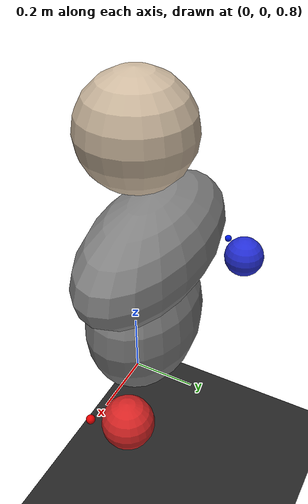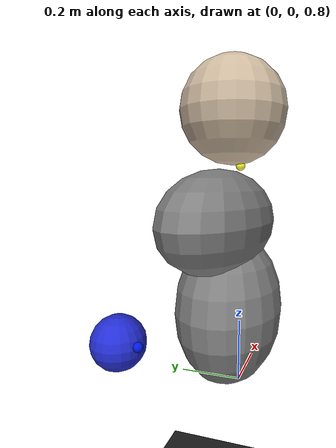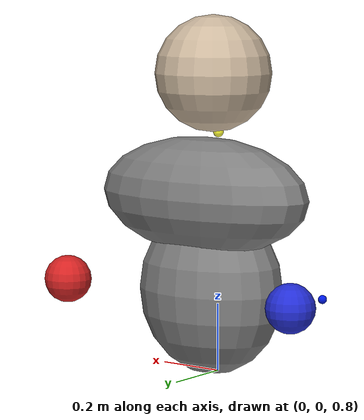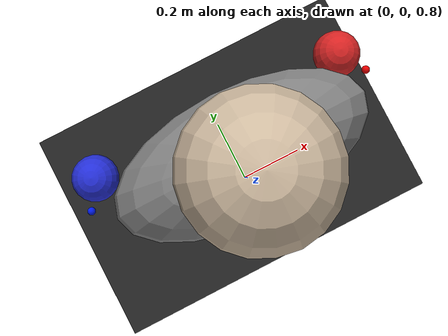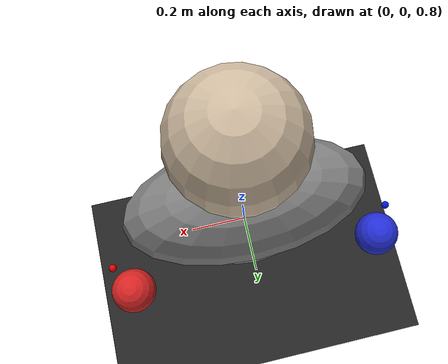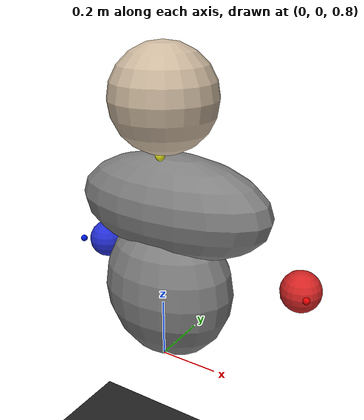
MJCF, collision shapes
<mujoco model="boxing_mannequin_scene">
  <compiler angle="radian" coordinate="local" inertiafromgeom="auto" meshdir="." autolimits="true"/>
  <option timestep="0.002" gravity="0 0 -9.81" integrator="RK4"/>

  <asset>
    <texture name="skybox" type="skybox" builtin="gradient" rgb1="0.15 0.18 0.22" rgb2="0.02 0.03 0.04" width="512" height="512"/>
    <texture name="floor_tex" type="2d" builtin="checker" rgb1="0.16 0.16 0.16" rgb2="0.12 0.12 0.12" width="256" height="256"/>
    <material name="floor_mat" texture="floor_tex" texrepeat="6 6" texuniform="true" reflectance="0.1"/>
    <material name="mannequin_mat" rgba="0.75 0.68 0.58 1.0" specular="0.1" shininess="0.2"/>
    <material name="head_mat" rgba="0.80 0.72 0.62 1.0" specular="0.1" shininess="0.2"/>
    <material name="glove_r_mat" rgba="0.84 0.14 0.14 1.0" specular="0.2" shininess="0.3"/>
    <material name="glove_l_mat" rgba="0.14 0.18 0.84 1.0" specular="0.2" shininess="0.3"/>
    <mesh name="mannequin_mesh" file="BoxingDummy.stl" scale="1.1 1.1 1.1"/>
    <mesh name="glove_r_mesh" file="boxing_glove_r.stl" scale="0.06 0.06 0.06"/>
    <mesh name="glove_l_mesh" file="boxing_glove_r.stl" scale="-0.06 0.06 0.06"/>
  </asset>

  <default>
    <geom friction="0.8 0.1 0.02" solref="0.003 1" solimp="0.95 0.98 0.001"/>
    <joint damping="20" armature="0.01"/>
    <position kp="1800" kv="90" ctrllimited="true"/>
  </default>

  <worldbody>
    <light directional="true" pos="0 0 4" dir="0 0 -1" diffuse="0.8 0.8 0.8" specular="0.2 0.2 0.2"/>
    <geom name="floor" type="plane" pos="0 0 0" size="5 5 0.1" material="floor_mat" contype="1" conaffinity="1"/>

    <!-- Root body with XY planar translation control. -->
    <body name="mannequin" pos="0 0 0.0">
      <joint name="mannequin_x" type="slide" axis="1 0 0" range="-1.5 1.5"/>
      <joint name="mannequin_y" type="slide" axis="0 1 0" range="-1.5 1.5"/>
      <joint name="mannequin_rotation" type="hinge" axis="0 0 1" range="-3.14 3.14"/>
      <geom name="mannequin_visual" type="mesh" mesh="mannequin_mesh" material="mannequin_mat" contype="0" conaffinity="0"/>
      <geom name="mannequin_chest_collision" type="ellipsoid" pos="0.0 0.07 1.33" size="0.35 0.17 0.17"/>
      <geom name="mannequin_waist_collision" type="ellipsoid" pos="0.0 0.035 1.05" size="0.23 0.17 0.25"/>
      <geom name="mannequin_head_collision" type="sphere" pos="0.0 0.025 1.68" size="0.17" mass="4.0" material="head_mat"/>

      <!-- Main observation sites -->
      <site name="mannequin_com_site" pos="0 0 1.508" size="0.015" rgba="1 1 0 0.8"/>
      <site name="mannequin_head_hit_site" type="sphere" pos="0.0 0.025 1.68" size="0.17" rgba="1 0.2 0.2 0.25"/>
      <site name="mannequin_chest_hit_site" type="ellipsoid" pos="0.0 0.07 1.33" size="0.35 0.17 0.17" rgba="0.2 1 0.2 0.2"/>
      <site name="mannequin_waist_hit_site" type="ellipsoid" pos="0.0 0.035 1.05" size="0.23 0.17 0.25" rgba="0.2 1 0.2 0.2"/>

      <body name="right_glove_anchor" pos="0.402 0.126 1.068">
        <joint name="right_glove_x" type="slide" axis="1 0 0" range="-0.65 0"/>
        <joint name="right_glove_y" type="slide" axis="0 1 0" range="0 0.55"/>
        <joint name="right_glove_z" type="slide" axis="0 0 1" range="0 0.45"/>
        <geom name="right_glove_visual" type="mesh" mesh="glove_r_mesh" material="glove_r_mat" contype="0" conaffinity="0"/>
        <geom name="right_glove_collision" type="sphere" pos="0.0 0.082 -0.006" size="0.07" mass="1.2" rgba="0.84 0.14 0.14 0.15"/>
        <site name="right_glove_site" pos="0.05 0 0.013" size="0.012" rgba="0.9 0 0 1"/>
      </body>

      <body name="left_glove_anchor" pos="-0.402 0.126 1.068">
        <joint name="left_glove_x" type="slide" axis="1 0 0" range="0 0.65"/>
        <joint name="left_glove_y" type="slide" axis="0 1 0" range="0 0.55"/>
        <joint name="left_glove_z" type="slide" axis="0 0 1" range="0 0.45"/>
        <geom name="left_glove_visual" type="mesh" mesh="glove_l_mesh" material="glove_l_mat" contype="0" conaffinity="0"/>
        <geom name="left_glove_collision" type="sphere" pos="-0.0 0.082 -0.006" size="0.07" mass="1.2" rgba="0.14 0.18 0.84 0.15"/>
        <site name="left_glove_site" pos="-0.05 0 0.013" size="0.012" rgba="0 0.1 0.9 1"/>
      </body>
    </body>
  </worldbody>

  <actuator>
    <!-- XY planar motion -->
    <position name="mannequin_x_ctrl" joint="mannequin_x" ctrlrange="-1.5 1.5"/>
    <position name="mannequin_y_ctrl" joint="mannequin_y" ctrlrange="-1.5 1.5"/>
    <!-- XYZ right glove -->
    <position name="right_glove_x_ctrl" joint="right_glove_x" ctrlrange="-0.65 0"/>
    <position name="right_glove_y_ctrl" joint="right_glove_y" ctrlrange="-0 0.55"/>
    <position name="right_glove_z_ctrl" joint="right_glove_z" ctrlrange="-0 0.45"/>
    <!-- XYZ left glove -->
    <position name="left_glove_x_ctrl" joint="left_glove_x" ctrlrange="-0 0.65"/>
    <position name="left_glove_y_ctrl" joint="left_glove_y" ctrlrange="-0 0.55"/>
    <position name="left_glove_z_ctrl" joint="left_glove_z" ctrlrange="-0 0.45"/>
  </actuator>

  <sensor>
    <!-- COM pose -->
    <framepos name="mannequin_com_pos" objtype="site" objname="mannequin_com_site"/>
    <framequat name="mannequin_com_quat" objtype="body" objname="mannequin"/>

    <!-- Hit observations -->
    <touch name="hit_head" site="mannequin_head_hit_site"/>
    <touch name="hit_chest" site="mannequin_chest_hit_site"/>

    <!-- Glove XYZ position observations -->
    <framepos name="right_glove_pos" objtype="site" objname="right_glove_site"/>
    <framepos name="left_glove_pos" objtype="site" objname="left_glove_site"/>
  </sensor>

</mujoco>
